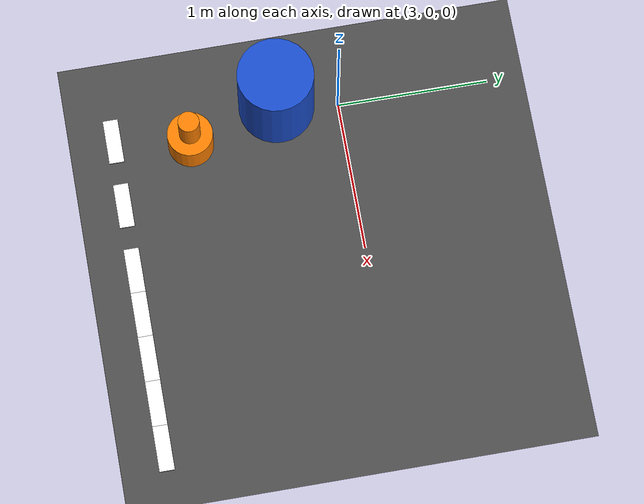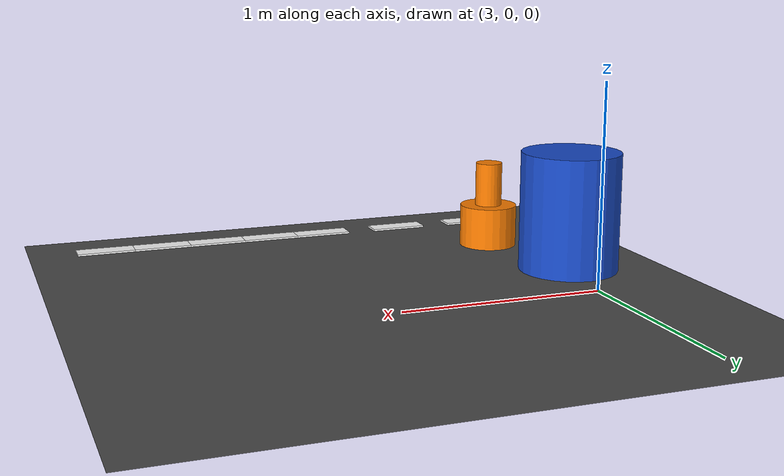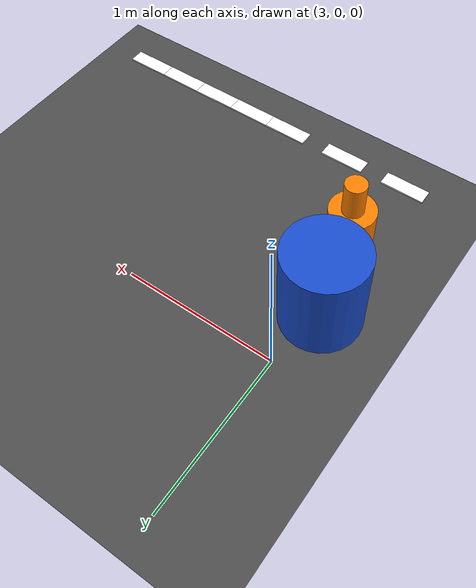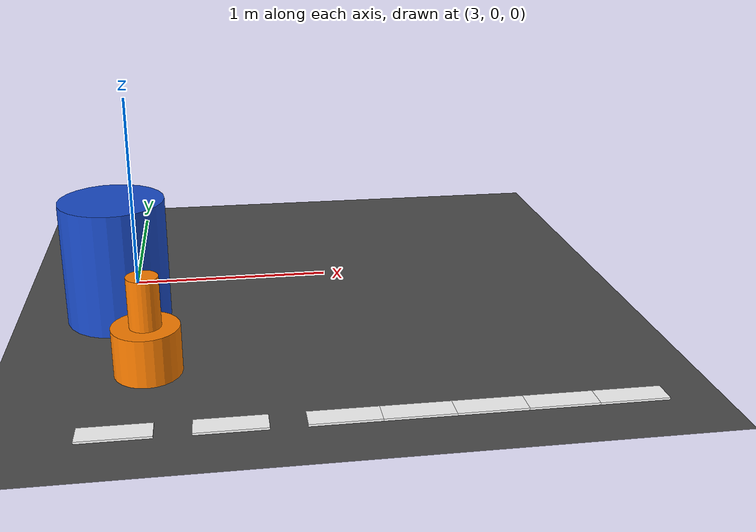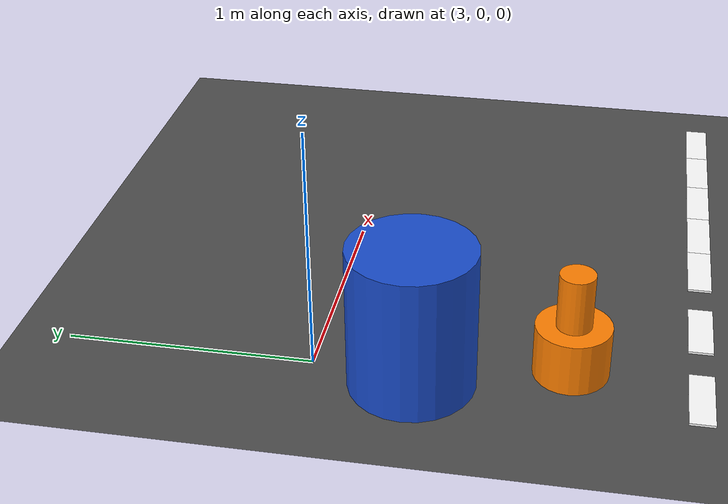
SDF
<sdf version="1.10">
 <world name="igvc_autonav">
  <model name="ground_plane">
   <static>true</static>
   <link name="link">
    <collision name="collision">
     <geometry><plane><normal>0 0 1</normal><size>60 60</size></plane></geometry>
     <surface><friction><ode><mu>0.80000000000000004</mu><mu2>0.80000000000000004</mu2></ode></friction></surface>
    </collision>
    <visual name="visual">
     <geometry><plane><normal>0 0 1</normal><size>60 60</size></plane></geometry>
     <material>
      <ambient>0.25 0.25 0.25 1</ambient>
      <diffuse>0.300000012 0.300000012 0.300000012 1</diffuse>
      <specular>0.100000001 0.100000001 0.100000001 1</specular>
     </material>
    </visual>
    <inertial>
     <mass>1</mass>
     <inertia><ixx>1</ixx><ixy>0</ixy><ixz>0</ixz><iyy>1</iyy><iyz>0</iyz><izz>1</izz></inertia>
    </inertial>
   </link>
  </model>
  <model name="lane_outer_24">
   <static>true</static>
   <pose>3 -1.5 0.01 0 0 0</pose>
   <link name="link">
    <visual name="visual">
     <geometry><box><size>0.29999999999999999 0.10000000000000001 0.01</size></box></geometry>
     <material><ambient>1 1 1 1</ambient><diffuse>1 1 1 1</diffuse><emissive>1 1 1 1</emissive></material>
    </visual>
    <inertial>
     <mass>1</mass>
     <inertia><ixx>1</ixx><ixy>0</ixy><ixz>0</ixz><iyy>1</iyy><iyz>0</iyz><izz>1</izz></inertia>
    </inertial>
   </link>
  </model>
  <model name="lane_outer_25">
   <static>true</static>
   <pose>3.4500000000000002 -1.5 0.01 0 0 0</pose>
   <link name="link">
    <visual name="visual">
     <geometry><box><size>0.29999999999999999 0.10000000000000001 0.01</size></box></geometry>
     <material><ambient>1 1 1 1</ambient><diffuse>1 1 1 1</diffuse><emissive>1 1 1 1</emissive></material>
    </visual>
    <inertial>
     <mass>1</mass>
     <inertia><ixx>1</ixx><ixy>0</ixy><ixz>0</ixz><iyy>1</iyy><iyz>0</iyz><izz>1</izz></inertia>
    </inertial>
   </link>
  </model>
  <model name="lane_outer_26">
   <static>true</static>
   <pose>3.8999999999999999 -1.5 0.01 0 0 0</pose>
   <link name="link">
    <visual name="visual">
     <geometry><box><size>0.29999999999999999 0.10000000000000001 0.01</size></box></geometry>
     <material><ambient>1 1 1 1</ambient><diffuse>1 1 1 1</diffuse><emissive>1 1 1 1</emissive></material>
    </visual>
    <inertial>
     <mass>1</mass>
     <inertia><ixx>1</ixx><ixy>0</ixy><ixz>0</ixz><iyy>1</iyy><iyz>0</iyz><izz>1</izz></inertia>
    </inertial>
   </link>
  </model>
  <model name="lane_outer_27">
   <static>true</static>
   <pose>4.2000000000000002 -1.5 0.01 0 0 0</pose>
   <link name="link">
    <visual name="visual">
     <geometry><box><size>0.29999999999999999 0.10000000000000001 0.01</size></box></geometry>
     <material><ambient>1 1 1 1</ambient><diffuse>1 1 1 1</diffuse><emissive>1 1 1 1</emissive></material>
    </visual>
    <inertial>
     <mass>1</mass>
     <inertia><ixx>1</ixx><ixy>0</ixy><ixz>0</ixz><iyy>1</iyy><iyz>0</iyz><izz>1</izz></inertia>
    </inertial>
   </link>
  </model>
  <model name="lane_outer_28">
   <static>true</static>
   <pose>4.5 -1.5 0.01 0 0 0</pose>
   <link name="link">
    <visual name="visual">
     <geometry><box><size>0.29999999999999999 0.10000000000000001 0.01</size></box></geometry>
     <material><ambient>1 1 1 1</ambient><diffuse>1 1 1 1</diffuse><emissive>1 1 1 1</emissive></material>
    </visual>
    <inertial>
     <mass>1</mass>
     <inertia><ixx>1</ixx><ixy>0</ixy><ixz>0</ixz><iyy>1</iyy><iyz>0</iyz><izz>1</izz></inertia>
    </inertial>
   </link>
  </model>
  <model name="lane_outer_29">
   <static>true</static>
   <pose>4.7999999999999998 -1.5 0.01 0 0 0</pose>
   <link name="link">
    <visual name="visual">
     <geometry><box><size>0.29999999999999999 0.10000000000000001 0.01</size></box></geometry>
     <material><ambient>1 1 1 1</ambient><diffuse>1 1 1 1</diffuse><emissive>1 1 1 1</emissive></material>
    </visual>
    <inertial>
     <mass>1</mass>
     <inertia><ixx>1</ixx><ixy>0</ixy><ixz>0</ixz><iyy>1</iyy><iyz>0</iyz><izz>1</izz></inertia>
    </inertial>
   </link>
  </model>
  <model name="lane_outer_30">
   <static>true</static>
   <pose>5.0999999999999996 -1.5 0.01 0 0 0</pose>
   <link name="link">
    <visual name="visual">
     <geometry><box><size>0.29999999999999999 0.10000000000000001 0.01</size></box></geometry>
     <material><ambient>1 1 1 1</ambient><diffuse>1 1 1 1</diffuse><emissive>1 1 1 1</emissive></material>
    </visual>
    <inertial>
     <mass>1</mass>
     <inertia><ixx>1</ixx><ixy>0</ixy><ixz>0</ixz><iyy>1</iyy><iyz>0</iyz><izz>1</izz></inertia>
    </inertial>
   </link>
  </model>
  <model name="cone_3">
   <static>true</static>
   <link name="link">
    <collision name="collision_base">
     <geometry><cylinder><radius>0.14999999999999999</radius><length>0.22</length></cylinder></geometry>
     <pose>0 0 0.11 0 0 0</pose>
    </collision>
    <visual name="visual_base">
     <geometry><cylinder><radius>0.14999999999999999</radius><length>0.22</length></cylinder></geometry>
     <pose>0 0 0.11 0 0 0</pose>
     <material>
      <ambient>1 0.5 0 1</ambient>
      <diffuse>1 0.5 0 1</diffuse>
      <specular>0.300000012 0.300000012 0.300000012 1</specular>
     </material>
    </visual>
    <collision name="collision_top">
     <geometry>
      <cylinder><radius>0.070000000000000007</radius><length>0.23000000000000001</length></cylinder>
     </geometry>
     <pose>0 0 0.33500000000000002 0 0 0</pose>
    </collision>
    <visual name="visual_top">
     <geometry>
      <cylinder><radius>0.070000000000000007</radius><length>0.23000000000000001</length></cylinder>
     </geometry>
     <pose>0 0 0.33500000000000002 0 0 0</pose>
     <material>
      <ambient>1 0.5 0 1</ambient>
      <diffuse>1 0.5 0 1</diffuse>
      <specular>0.300000012 0.300000012 0.300000012 1</specular>
     </material>
    </visual>
    <inertial>
     <mass>1</mass>
     <inertia><ixx>1</ixx><ixy>0</ixy><ixz>0</ixz><iyy>1</iyy><iyz>0</iyz><izz>1</izz></inertia>
    </inertial>
   </link>
   <pose>3.1076741218566895 -1 0 0 0 0</pose>
  </model>
  <model name="barrel_nml_1_1">
   <static>true</static>
   <link name="link">
    <collision name="collision">
     <geometry><cylinder><radius>0.25</radius><length>0.59999999999999998</length></cylinder></geometry>
     <pose>0 0 0.29999999999999999 0 0 0</pose>
    </collision>
    <visual name="visual">
     <geometry><cylinder><radius>0.25</radius><length>0.59999999999999998</length></cylinder></geometry>
     <pose>0 0 0.29999999999999999 0 0 0</pose>
     <material>
      <ambient>0.100000001 0.300000012 0.800000012 1</ambient>
      <diffuse>0.100000001 0.300000012 0.800000012 1</diffuse>
      <specular>0.300000012 0.300000012 0.300000012 1</specular>
     </material>
    </visual>
    <inertial>
     <mass>1</mass>
     <inertia><ixx>1</ixx><ixy>0</ixy><ixz>0</ixz><iyy>1</iyy><iyz>0</iyz><izz>1</izz></inertia>
    </inertial>
   </link>
   <pose>2.9413695335388184 -0.40288800001144409 0 0 0 0</pose>
  </model>
 </world>
</sdf>
